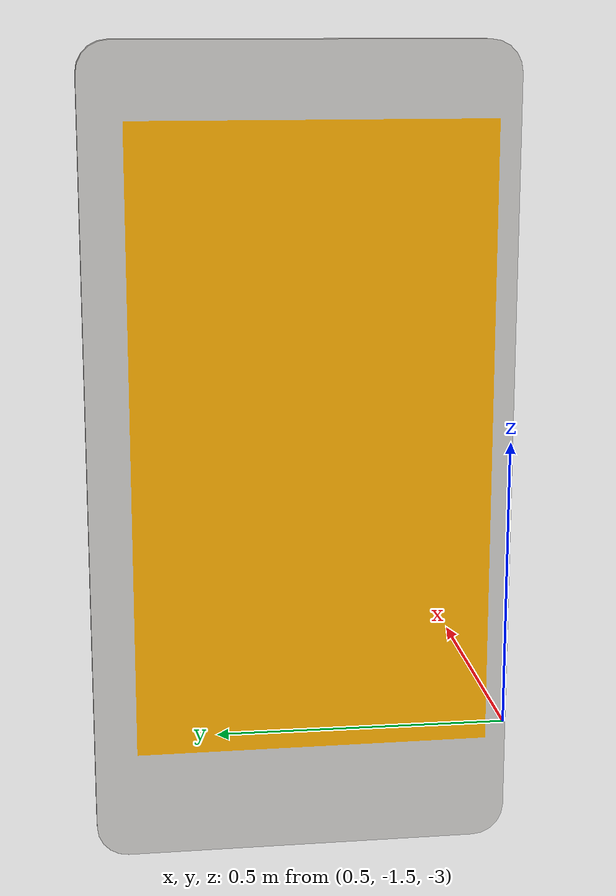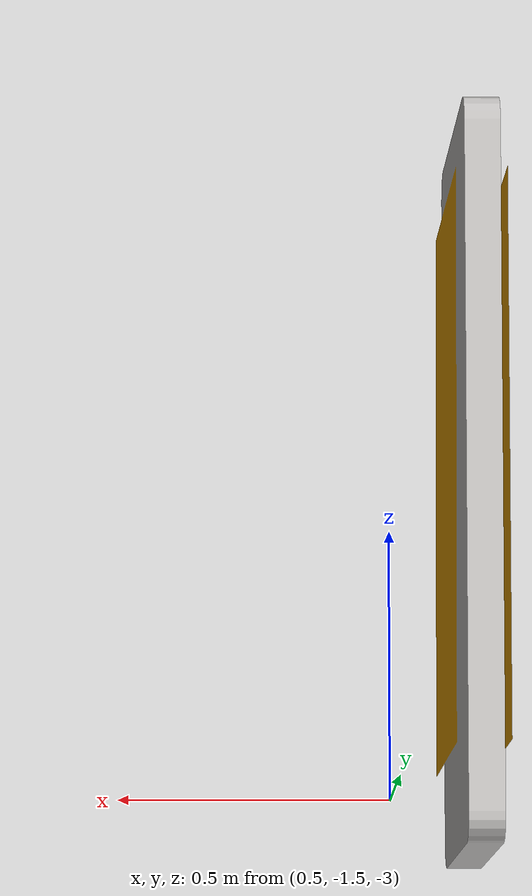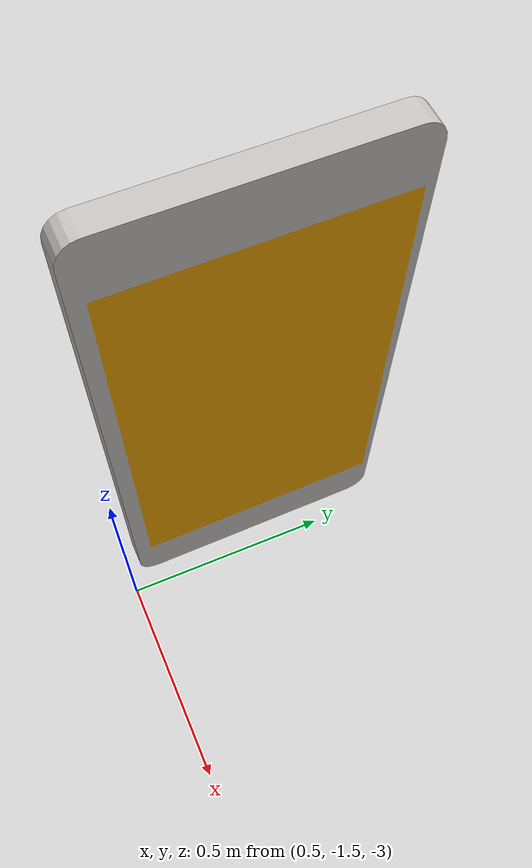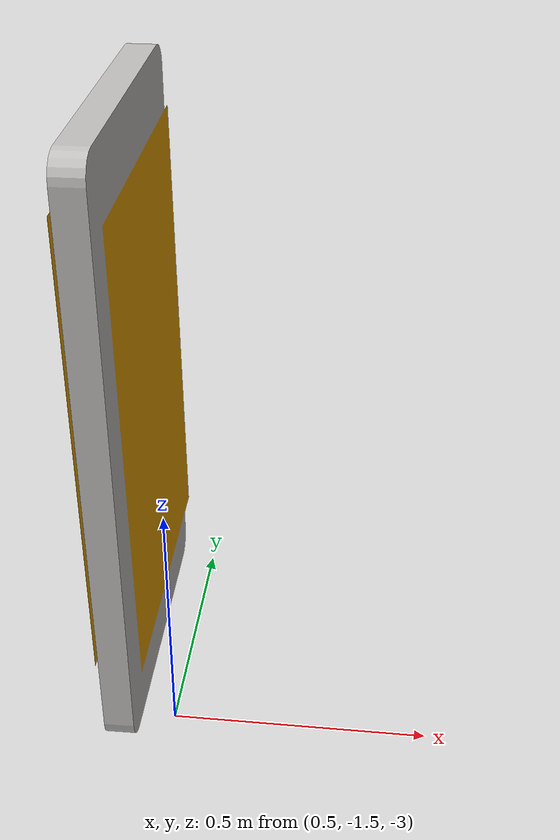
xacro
<?xml version="1.0"?>
<robot name="buoy_2" xmlns:xacro="http://www.ros.org/wiki/xacro">

<!-- Introducir meshes -->
<xacro:property name="visual_mesh_file" value="file://$(find uuv_world)/models/meshes/buoy2.dae" />

<link name="buoy2_base">
    <visual>
        <origin xyz="14.349550 -0.497678 -3.126359" rpy="0.0 0.0 1.57"/>
        <geometry>
            <mesh filename="${visual_mesh_file}" scale="1 1 1" />
        </geometry>
    </visual>

        <!-- Se deben cambiar los parametros reales-->
    <collision>
      <origin xyz="14.349550 -0.497678 -3.126359" rpy="0.0 0.0 1.57"/>
      <geometry>
        <mesh filename="${visual_mesh_file}" scale="1 1 1" />
      </geometry>
    </collision>

    <inertial>
      <origin xyz="14.349550 -0.497678 -3.126359" rpy="0.0 0.0 1.57"/>
      <mass value="1"/>
      <inertia
        ixx="1.0" ixy="0.0" ixz="0.0"
        iyy="1.0" iyz="0.0"
        izz="1.0"/>
    </inertial>

</link>

</robot>
